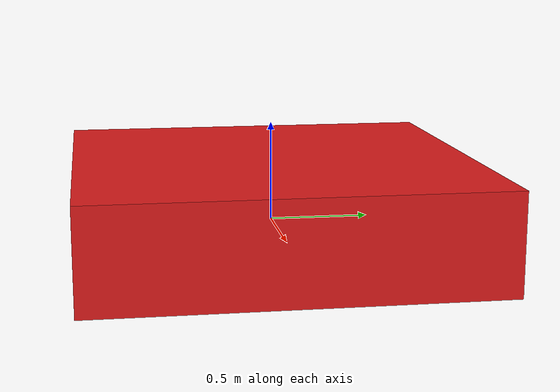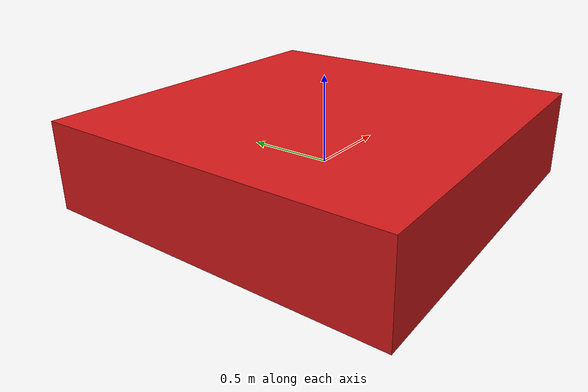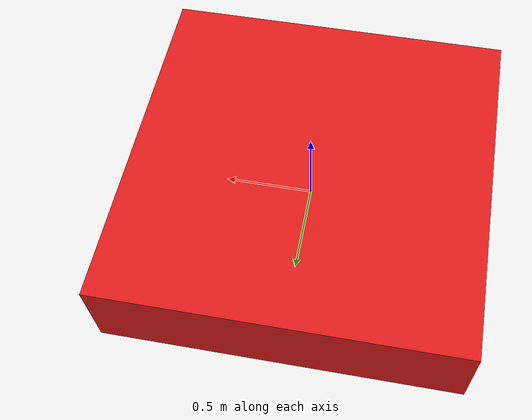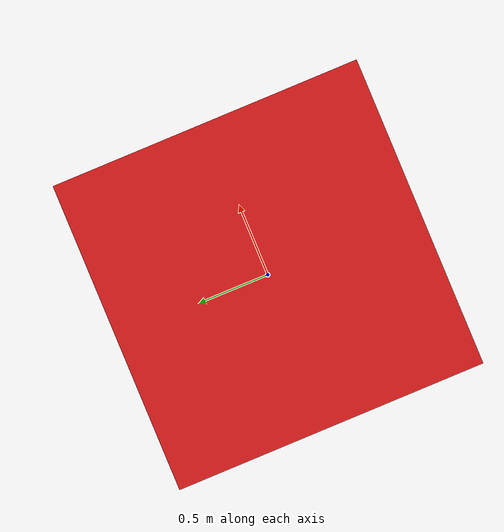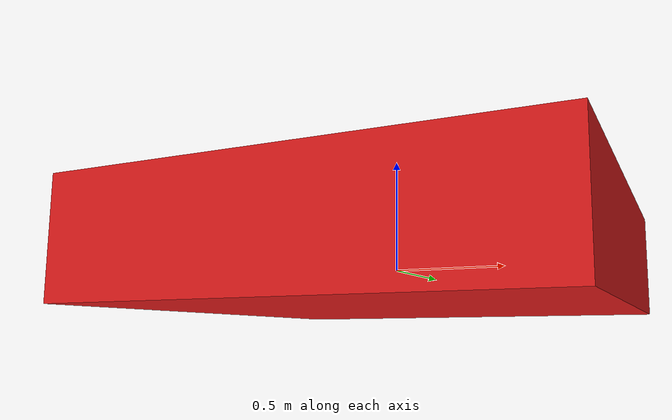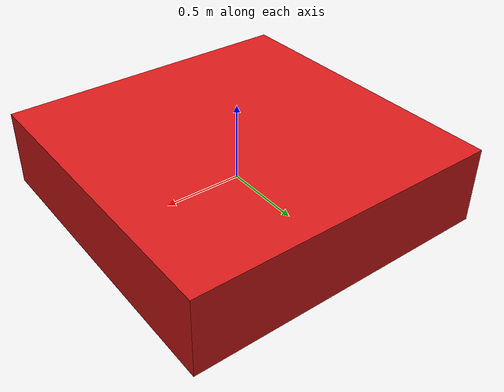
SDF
<?xml version="1.0" ?><sdf version="1.4">
  <model name="box">
    <static>true</static>
    <pose>0 0 0.075 0 0 0</pose>
    <link name="box">
      <collision name="collision">
        <geometry>
          <box>
            <size>2.0 2.0 0.5</size>
          </box>
        </geometry>
      </collision>
      <visual name="visual">
        <material>
            <ambient>0.0 0 0.0 1</ambient>
            <diffuse>0.85 0.1 0.1 1</diffuse>
            <specular>0.1 0.1 0.1 1</specular>
        </material>
        <geometry>
          <box>
            <size>2.0 2.0 0.5</size>
          </box>
        </geometry>
      </visual>
    </link>
  </model>
</sdf>
